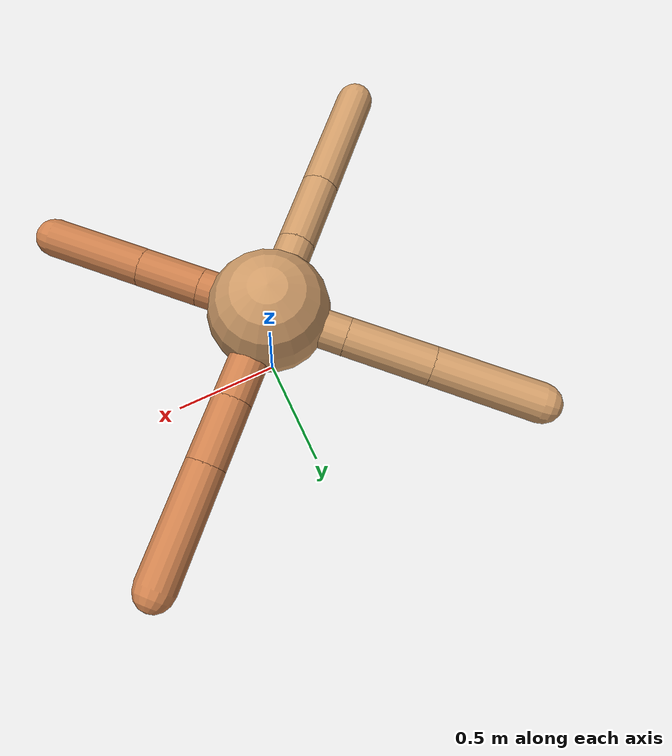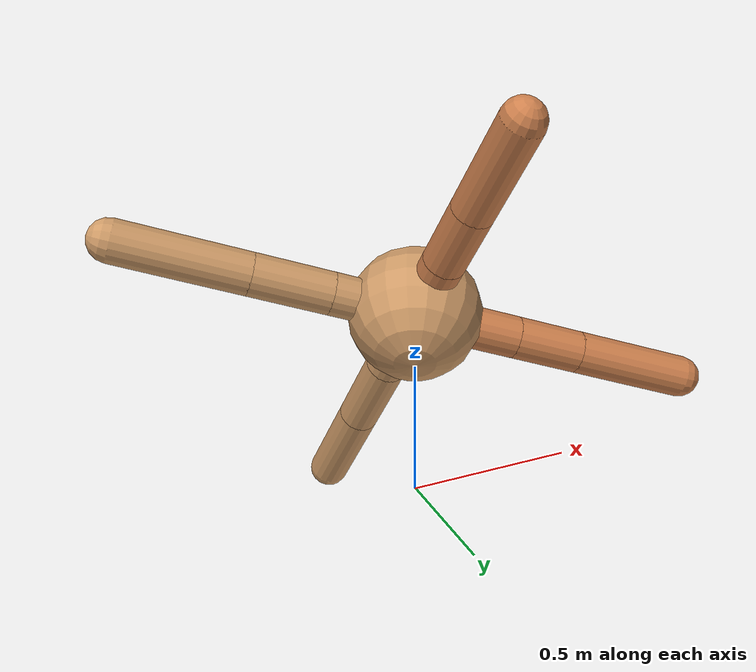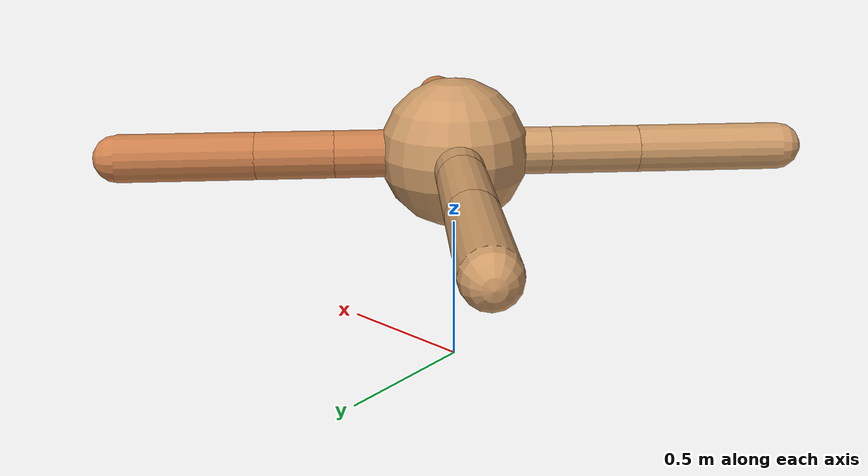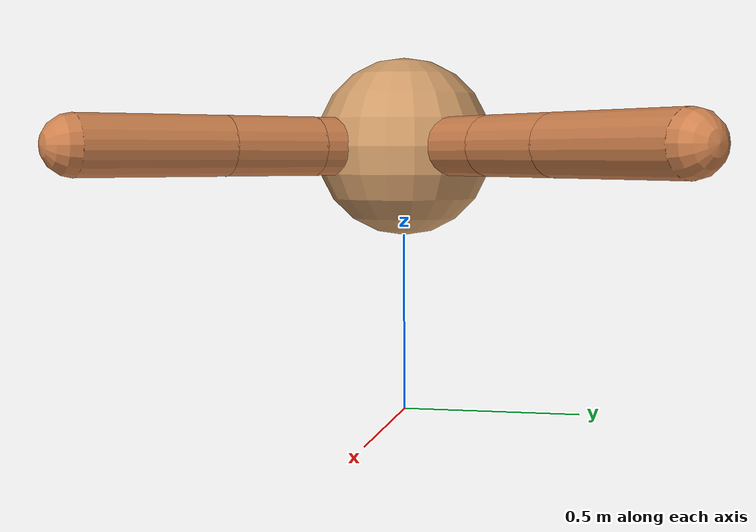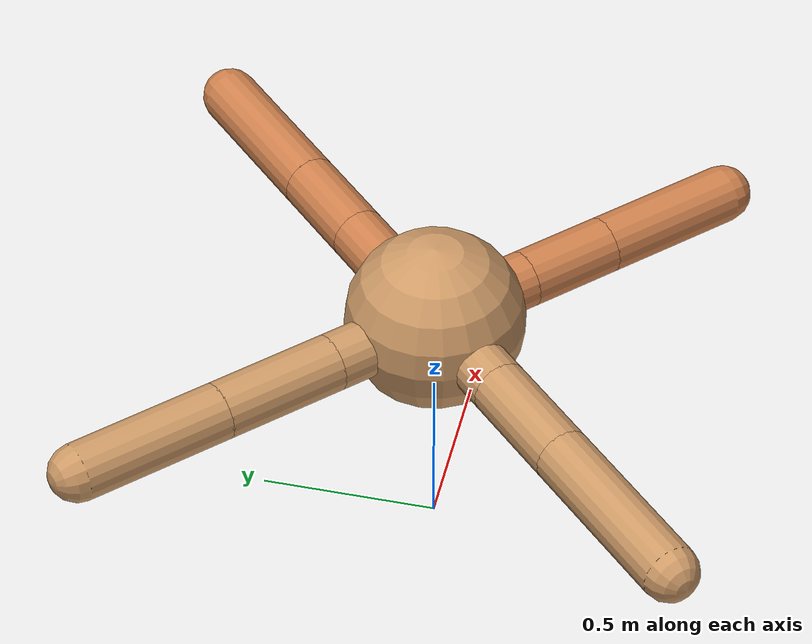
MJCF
<mujoco model="ant">
  <compiler angle="degree" coordinate="local" inertiafromgeom="true" />
  <option integrator="RK4" timestep="0.01" />
  <custom>
    <numeric data="0.0 0.0 0.55 1.0 0.0 0.0 0.0 0.0 1.0 0.0 -1.0 0.0 -1.0 0.0 1.0" name="init_qpos" />
  </custom>
  <default>
    <joint armature="1" damping="1" limited="true" />
    <geom conaffinity="0" condim="3" density="5.0" friction="1.5 0.1 0.1" margin="0.01" rgba="0.8 0.6 0.4 1" />
  </default>
  <worldbody>
    <body name="torso" pos="0 0 0.75">
      <geom name="torso_geom" pos="0 0 0" size="0.25" type="sphere" />

      <body name="front_left_leg" pos="0 0 0">
        <geom fromto="0.0 0.0 0.0 0.28202894685185437 0.28202894685185437 0.0" name="aux_1_geom" size="0.08" type="capsule" rgba=".8 .5 .3 1" />
        <body name="aux_1" pos="0.28202894685185437 0.28202894685185437 0.0">
          <joint axis="0 0 1" name="hip_1" pos="0.0 0.0 0.0" range="-40 40" type="hinge" />
          <geom fromto="0.0 0.0 0.0 0.18325110806871064 0.18325110806871064 0.0" name="left_leg_geom" size="0.08" type="capsule" rgba=".8 .5 .3 1" />
          <body pos="0.18325110806871064 0.18325110806871064 0.0" name="front_left_foot">
            <joint axis="-1 1 0" name="ankle_1" pos="0.0 0.0 0.0" range="30 100" type="hinge" />
            <geom fromto="0.0 0.0 0.0 0.31687712116535194 0.31687712116535194 0.0" name="left_ankle_geom" size="0.08" type="capsule" rgba=".8 .5 .3 1" />
          </body>
        </body>
      </body>
      <body name="front_right_leg" pos="0 0 0">
        <geom fromto="0.0 0.0 0.0 -0.23297323769150557 0.23297323769150557 0.0" name="aux_2_geom" size="0.08" type="capsule" />
        <body name="aux_2" pos="-0.23297323769150557 0.23297323769150557 0.0">
          <joint axis="0 0 1" name="hip_2" pos="0.0 0.0 0.0" range="-40 40" type="hinge" />
          <geom fromto="0.0 0.0 0.0 -0.2459635721140656 0.2459635721140656 0.0" name="right_leg_geom" size="0.08" type="capsule" />
          <body pos="-0.2459635721140656 0.2459635721140656 0.0" name="front_right_foot">
            <joint axis="1 1 0" name="ankle_2" pos="0.0 0.0 0.0" range="-100 -30" type="hinge" />
            <geom fromto="0.0 0.0 0.0 -0.3024973008353817 0.3024973008353817 0.0" name="right_ankle_geom" size="0.08" type="capsule" />
          </body>
        </body>
      </body>
      <body name="left_back_leg" pos="0 0 0">
        <geom fromto="0.0 0.0 0.0 -0.22724833230586405 -0.22724833230586405 0.0" name="aux_3_geom" size="0.08" type="capsule" />
        <body name="aux_3" pos="-0.22724833230586405 -0.22724833230586405 0.0">
          <joint axis="0 0 1" name="hip_3" pos="0.0 0.0 0.0" range="-40 40" type="hinge" />
          <geom fromto="0.0 0.0 0.0 -0.21124784639123703 -0.21124784639123703 0.0" name="back_leg_geom" size="0.08" type="capsule" />
          <body pos="-0.21124784639123703 -0.21124784639123703 0.0" name="left_back_foot">
            <joint axis="-1 1 0" name="ankle_3" pos="0.0 0.0 0.0" range="-100 -30" type="hinge" />
            <geom fromto="0.0 0.0 0.0 -0.34720430878009967 -0.34720430878009967 0.0" name="third_ankle_geom" size="0.08" type="capsule" />
          </body>
        </body>
      </body>
      <body name="right_back_leg" pos="0 0 0">
        <geom fromto="0.0 0.0 0.0 0.20690494078884492 -0.20690494078884492 0.0" name="aux_4_geom" size="0.08" type="capsule" rgba=".8 .5 .3 1" />
        <body name="aux_4" pos="0.20690494078884492 -0.20690494078884492 0.0">
          <joint axis="0 0 1" name="hip_4" pos="0.0 0.0 0.0" range="-40 40" type="hinge" />
          <geom fromto="0.0 0.0 0.0 0.18462662708389127 -0.18462662708389127 0.0" name="rightback_leg_geom" size="0.08" type="capsule" rgba=".8 .5 .3 1" />
          <body pos="0.18462662708389127 -0.18462662708389127 0.0" name="right_back_foot">
            <joint axis="1 1 0" name="ankle_4" pos="0.0 0.0 0.0" range="30 100" type="hinge" />
            <geom fromto="0.0 0.0 0.0 0.2853609529884828 -0.2853609529884828 0.0" name="fourth_ankle_geom" size="0.08" type="capsule" rgba=".8 .5 .3 1" />
          </body>
        </body>
      </body>
    </body>
  </worldbody>
  <actuator>
    <motor ctrllimited="true" ctrlrange="-1.0 1.0" joint="hip_4" gear="150" />
    <motor ctrllimited="true" ctrlrange="-1.0 1.0" joint="ankle_4" gear="150" />
    <motor ctrllimited="true" ctrlrange="-1.0 1.0" joint="hip_1" gear="150" />
    <motor ctrllimited="true" ctrlrange="-1.0 1.0" joint="ankle_1" gear="150" />
    <motor ctrllimited="true" ctrlrange="-1.0 1.0" joint="hip_2" gear="150" />
    <motor ctrllimited="true" ctrlrange="-1.0 1.0" joint="ankle_2" gear="150" />
    <motor ctrllimited="true" ctrlrange="-1.0 1.0" joint="hip_3" gear="150" />
    <motor ctrllimited="true" ctrlrange="-1.0 1.0" joint="ankle_3" gear="150" />
  </actuator>
</mujoco>
